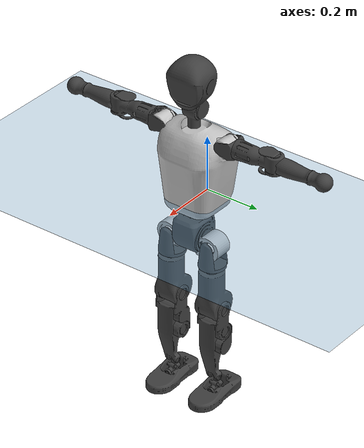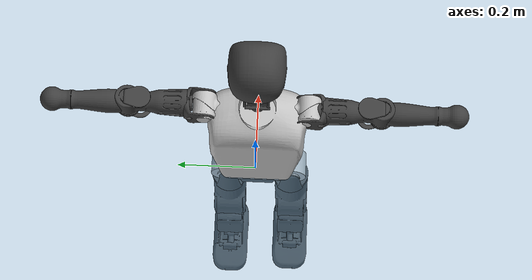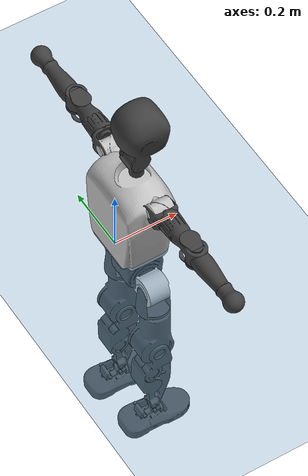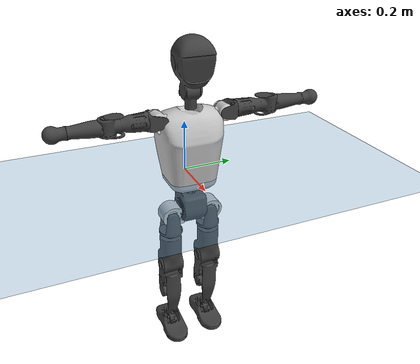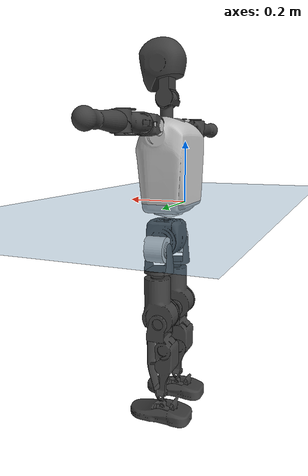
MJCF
<mujoco model="T1">
  <compiler angle="radian" assetdir="assets" balanceinertia="true" inertiafromgeom="false"/>

  <option timestep="0.005" density="1.2" viscosity="2e-05"/>

  <size nkey="1"/>

  <visual>
    <quality shadowsize="8192"/>
    <map shadowclip="0.5"/>
  </visual>

  <default>
    <default class="/">
      <joint armature="0.01" damping="0.01" frictionloss="0.1"/>
      <geom contype="0" conaffinity="0" group="1" solref="-1000 -80"/>
      <site size="0.01 0.005 0.005" group="5"/>
      <general forcelimited="true" biastype="affine" gainprm="25" biasprm="0 -25 -0.6"/>
      <default class="t1">
        <geom rgba="0.25 0.25 0.25 1"/>
        <default class="visual">
          <geom type="mesh" group="2"/>
        </default>
        <default class="collision">
          <geom group="3"/>
        </default>
        <default class="foot">
          <geom size="0.1115 0.05 0.015" type="box" condim="6" group="4" priority="1" solimp="0.015 1 0.015"/>
        </default>
        <default class="reward_collision_sphere">
          <geom group="5" rgba="1 0 0 1"/>
        </default>
      </default>
    </default>
  </default>

  <asset>
    <texture type="skybox" colorspace="auto" name="//unnamed_texture_0" builtin="gradient" rgb1="0.95 0.95 0.95" rgb2="0.95 0.95 0.95" width="100" height="600"/>
    <texture type="2d" colorspace="auto" name="texplane" builtin="checker" rgb1="0.345 0.575 0.748" rgb2="0.345 0.575 0.748" markrgb="1 1 1" width="512" height="512"/>
    <material name="MatPlane" class="/" texture="texplane" texuniform="true" texrepeat="2 2" specular="0.9"/>
    <mesh name="Trunk" class="/" file="Trunk.stl"/>
    <mesh name="H1" class="/" file="H1.stl"/>
    <mesh name="H2" class="/" file="H2.stl"/>
    <mesh name="AL1" class="/" file="AL1.stl"/>
    <mesh name="AL2" class="/" file="AL2.stl"/>
    <mesh name="AL3" class="/" file="AL3.stl"/>
    <mesh name="left_hand_link" class="/" file="left_hand_link.stl"/>
    <mesh name="AR1" class="/" file="AR1.stl"/>
    <mesh name="AR2" class="/" file="AR2.stl"/>
    <mesh name="AR3" class="/" file="AR3.stl"/>
    <mesh name="right_hand_link" class="/" file="right_hand_link.stl"/>
    <mesh name="Waist" class="/" file="Waist.stl"/>
    <mesh name="Hip_Pitch_Left" class="/" file="Hip_Pitch_Left.stl"/>
    <mesh name="Hip_Roll_Left" class="/" file="Hip_Roll_Left.stl"/>
    <mesh name="Hip_Yaw_Left" class="/" file="Hip_Yaw_Left.stl"/>
    <mesh name="Shank_Left" class="/" file="Shank_Left.stl"/>
    <mesh name="Ankle_Cross_Left" class="/" file="Ankle_Cross_Left.stl"/>
    <mesh name="left_foot_link" class="/" file="left_foot_link.stl"/>
    <mesh name="Hip_Pitch_Right" class="/" file="Hip_Pitch_Right.stl"/>
    <mesh name="Hip_Roll_Right" class="/" file="Hip_Roll_Right.stl"/>
    <mesh name="Hip_Yaw_Right" class="/" file="Hip_Yaw_Right.stl"/>
    <mesh name="Shank_Right" class="/" file="Shank_Right.stl"/>
    <mesh name="Ankle_Cross_Right" class="/" file="Ankle_Cross_Right.stl"/>
    <mesh name="right_foot_link" class="/" file="right_foot_link.stl"/>
  </asset>

  <worldbody>
    <geom name="floor" class="/" size="100 100 0.125" type="plane" group="0" material="MatPlane"/>
    <light name="toplight_shadow" class="/" pos="0 0 5" dir="0.0990148 0.0990148 -0.990148" type="directional" ambient="0.04 0.04 0.04" diffuse="0.55 0.55 0.55" specular="0.12 0.12 0.12"/>
    <light name="toplight_fill" class="/" pos="0 0 5" dir="0.0990148 0.0990148 -0.990148" type="directional" castshadow="false" ambient="0.04 0.04 0.04" diffuse="0.3 0.3 0.3" specular="0.08 0.08 0.08"/>
    <body name="trunk" childclass="t1" pos="-0.000242548 -0.00247831 -0.000121492" quat="1 -0.000153177 0.000136145 -0.000530947">
      <inertial pos="0.0604181 -0.00297474 0.118802" quat="0.999984 0.00174344 -0.00440652 -0.00292748" mass="11.8699" diaginertia="0.149279 0.0222688 0.0986871"/>
      <joint name="//unnamed_joint_0" type="free" armature="0" damping="0" frictionloss="0"/>
      <geom name="//unnamed_geom_1" class="visual" rgba="0.76 0.76 0.76 1" mesh="Trunk"/>
      <geom name="//unnamed_geom_2" class="collision" size="0.0754269 0.100569 0.150854" pos="0.0666289 0 0.134872" type="box"/>
      <geom name="//unnamed_geom_3" class="reward_collision_sphere" size="0.115655" pos="0.0666289 0 0.112393"/>
      <geom name="//unnamed_geom_4" class="reward_collision_sphere" size="0.0150854" pos="0.0666289 0.0665264 0"/>
      <geom name="//unnamed_geom_5" class="reward_collision_sphere" size="0.0150854" pos="0.0666289 -0.0665264 0"/>
      <geom name="//unnamed_geom_6" class="reward_collision_sphere" size="0.0150854" pos="0.0666289 0.083745 0.202308"/>
      <geom name="//unnamed_geom_7" class="reward_collision_sphere" size="0.0150854" pos="0.0666289 -0.083745 0.202308"/>
      <site name="imu" pos="0.00676214 -0.000667823 -0.00722336" size="0.0100569"/>
      <camera name="track" pos="0 -1.56533 0" quat="0.707107 0.707107 0 0" mode="trackcom"/>
      <camera name="ego_camera" pos="0.135479 0 0.472051" quat="-0.5 -0.5 0.5 0.5"/>
      <body name="H1" pos="0.0683151 -0.000157355 0.274182" quat="1 0.000216532 -4.42123e-05 -5.19225e-05">
        <inertial pos="-0.000295609 -0.00187454 0.0644991" quat="0.763127 -0.0141295 -0.00269209 0.646089" mass="0.459736" diaginertia="0.000400953 6.83996e-05 0.000270523"/>
        <joint name="AAHead_yaw" pos="0 0 0" axis="-0.000559595 -0.00891517 0.99996" stiffness="0.00270326" range="-1.54126 1.56143" armature="0.00957514" damping="0.00812753" frictionloss="0.0980014"/>
        <geom name="//unnamed_geom_8" class="visual" mesh="H1"/>
        <body name="H2" pos="-0.00368361 0.00258237 0.0669705" quat="0.999999 -0.001214 9.69042e-05 0.000807496">
          <inertial pos="0.00875957 0.000453064 0.112698" quat="0.988406 0.10538 -0.0737503 -0.0806832" mass="0.661234" diaginertia="0.00345882 0.000577295 0.00306201"/>
          <joint name="Head_pitch" pos="0 0 0" axis="0.0127373 -0.999917 -0.00179987" range="-1.21284 0.308549" armature="0.0111809" damping="0.00921437" frictionloss="0.105665"/>
          <geom name="//unnamed_geom_9" class="visual" mesh="H2"/>
          <geom name="//unnamed_geom_10" class="collision" size="0.0804554" pos="0.0111048 0 0.123632"/>
          <geom name="//unnamed_geom_11" class="reward_collision_sphere" size="0.0905123" pos="0.0222096 0 0.112393"/>
        </body>
      </body>
      <body name="AL1" pos="0.0674266 0.0848099 0.247091" quat="1 0.000358907 -2.68074e-05 0.000327079">
        <inertial pos="-0.00291516 0.0350168 -0.000129621" quat="0.504193 0.4972 -0.503515 0.49503" mass="0.524621" diaginertia="0.00224295 0.000375124 0.000508322"/>
        <joint name="Left_Shoulder_Pitch" pos="0 0 0" axis="-0.00784907 0.999969 0.000449861" range="-3.35056 1.19337" armature="0.010206" damping="0.0125602" frictionloss="0.11262"/>
        <geom name="//unnamed_geom_12" class="visual" rgba="0.76 0.76 0.76 1" mesh="AL1"/>
        <body name="AL2" pos="0.00119361 0.04093 0.00234039" quat="1 0.000680407 0.000115403 -3.31809e-05">
          <inertial pos="0.00181233 0.0289432 -0.00260312" quat="0.485333 0.507454 -0.491664 0.514985" mass="0.166173" diaginertia="0.000687202 0.000106621 0.000315351"/>
          <joint name="Left_Shoulder_Roll" pos="0 0 0" axis="-0.99997 0.00679776 -0.00363075" stiffness="0.00994278" range="-1.52369 1.73646" armature="0.0093815" damping="0" frictionloss="0.102658"/>
          <geom name="//unnamed_geom_13" class="visual" mesh="AL2"/>
          <body name="AL3" pos="0.00349772 0.0485454 0.00293407" quat="0.999999 -0.000954013 -0.000207947 0.00035703">
            <inertial pos="-0.000372485 0.0677909 0.00222951" quat="0.706176 0.707946 -0.00864994 -0.00735746" mass="1.03601" diaginertia="0.0215763 0.00367552 0.0010874"/>
            <joint name="Left_Elbow_Pitch" pos="0 0 0" axis="0.00931279 -0.999898 -0.0107916" range="-2.24086 2.21337" armature="0.0086305" damping="7.85631e-05" frictionloss="0.104619"/>
            <geom name="//unnamed_geom_14" class="visual" mesh="AL3"/>
            <geom name="//unnamed_geom_15" class="collision" size="0.0301708 0.0754269" pos="0 0.0391332 0" quat="0.707105 0.707108 0 0" type="cylinder"/>
            <geom name="//unnamed_geom_16" class="reward_collision_sphere" size="0.0362049"/>
            <body name="left_hand_link" pos="-0.00181936 0.117488 -0.00109971" quat="1 -0.000239567 -0.000569954 0.000281509">
              <inertial pos="0.00147639 0.0886736 0.000310625" quat="0.699827 0.714309 -0.00037092 0.0019573" mass="0.334515" diaginertia="0.0137414 0.00245438 0.000381531"/>
              <joint name="Left_Elbow_Yaw" pos="0 0 0" axis="-0.00395396 0.0010151 0.999992" range="-2.43738 0.0379915" armature="0.00943978" damping="0.0247474" frictionloss="0.0957997"/>
              <geom name="//unnamed_geom_17" class="visual" mesh="left_hand_link"/>
              <geom name="//unnamed_geom_18" class="collision" size="0.0301708 0.0879981" pos="0 0.101746 0" quat="0.707105 0.707108 0 0" type="cylinder"/>
              <geom name="//unnamed_geom_19" class="reward_collision_sphere" size="0.0502846"/>
              <geom name="//unnamed_geom_20" class="reward_collision_sphere" size="0.0351992" pos="0 0.086093 0"/>
              <geom name="//unnamed_geom_21" class="reward_collision_sphere" size="0.0351992" pos="0 0.168273 0"/>
            </body>
          </body>
        </body>
      </body>
      <body name="AR1" pos="0.0660265 -0.0816817 0.248236" quat="0.999998 9.79625e-05 0.00180877 0.000582726">
        <inertial pos="-0.00257603 -0.0327568 -0.00208965" quat="0.509381 0.500676 -0.499447 0.490313" mass="0.555602" diaginertia="0.00222933 0.000380646 0.00054159"/>
        <joint name="Right_Shoulder_Pitch" pos="0 0 0" axis="0.00170524 -0.999998 -0.000397141" stiffness="0.0103483" range="-1.23985 3.26077" armature="0.0100782" damping="0" frictionloss="0.0875561"/>
        <geom name="//unnamed_geom_22" class="visual" rgba="0.76 0.76 0.76 1" mesh="AR1"/>
        <body name="AR2" pos="-0.00194396 -0.0339785 -0.00200147" quat="1 0.00010483 1.36984e-05 0.000192695">
          <inertial pos="0.00251679 -0.0301748 -0.00191395" quat="0.515603 0.477068 -0.511882 0.494507" mass="0.163464" diaginertia="0.000672968 0.000100356 0.000307092"/>
          <joint name="Right_Shoulder_Roll" pos="0 0 0" axis="-0.999948 0.00273262 0.00984496" range="-1.68199 1.62822" armature="0.0096181" damping="0.0185904" frictionloss="0.0879946"/>
          <geom name="//unnamed_geom_23" class="visual" mesh="AR2"/>
          <body name="AR3" pos="0.00182195 -0.0446941 0.00249786" quat="1 -0.000109041 0.00016357 -0.000100342">
            <inertial pos="-0.000720176 -0.0662101 -0.00241657" quat="0.707866 0.706346 -3.62101e-06 0.000177942" mass="1.03479" diaginertia="0.0216845 0.0036327 0.00110664"/>
            <joint name="Right_Elbow_Pitch" pos="0 0 0" axis="-0.000628645 0.999999 -0.000998174" stiffness="0.00709417" range="-2.26528 2.22642" armature="0.0103804" damping="0.0123575" frictionloss="0.109536"/>
            <geom name="//unnamed_geom_24" class="visual" mesh="AR3"/>
            <geom name="//unnamed_geom_25" class="collision" size="0.0301708 0.0754269" pos="0 -0.0391332 0" quat="0.707105 0.707108 0 0" type="cylinder"/>
            <geom name="//unnamed_geom_26" class="reward_collision_sphere" size="0.0362049"/>
            <body name="right_hand_link" pos="-0.000813332 -0.115151 -0.000281071" quat="1 -0.000223706 -0.000111443 -0.000152834">
              <inertial pos="-0.000309768 -0.0884906 -6.55716e-06" quat="0.706675 0.707537 0.00120095 -0.000628709" mass="0.316103" diaginertia="0.0132698 0.00230969 0.000373897"/>
              <joint name="Right_Elbow_Yaw" pos="0 0 0" axis="-0.00620059 0.000478186 0.999981" stiffness="0.00141235" range="0.00661771 2.47696" armature="0.00996481" damping="0.0161676" frictionloss="0.106677"/>
              <geom name="//unnamed_geom_27" class="visual" mesh="right_hand_link"/>
              <geom name="//unnamed_geom_28" class="collision" size="0.0301708 0.0879981" pos="0 -0.101746 0" quat="0.707105 0.707108 0 0" type="cylinder"/>
              <geom name="//unnamed_geom_29" class="reward_collision_sphere" size="0.0502846"/>
              <geom name="//unnamed_geom_30" class="reward_collision_sphere" size="0.0351992" pos="0 -0.086093 0"/>
              <geom name="//unnamed_geom_31" class="reward_collision_sphere" size="0.0351992" pos="0 -0.168273 0"/>
            </body>
          </body>
        </body>
      </body>
      <body name="Waist" pos="0.069177 -0.00167886 -0.131412" quat="0.999999 -0.000518062 0.000898081 0.000409879">
        <inertial pos="0.00317087 -0.00272331 0.00996725" quat="0.983629 -0.000601836 -0.180187 0.00263603" mass="2.69336" diaginertia="0.00946966 0.00160063 0.00880405"/>
        <joint name="Waist" pos="0 0 0" axis="-0.00141178 -0.00166924 0.999998" range="-1.53717 1.57777" armature="0.00951499" damping="0.0186174" frictionloss="0.100457"/>
        <geom name="//unnamed_geom_32" class="visual" mesh="Waist"/>
        <body name="Hip_Pitch_Left" pos="0.000824136 0.0797275 -0.00193628" quat="0.999999 -0.000737455 0.000506994 -0.000651534">
          <inertial pos="0.000873344 -0.00853744 -0.0202545" quat="0.975256 0.220929 0.00492683 0.00647538" mass="1.07178" diaginertia="0.00306679 0.000423882 0.00232142"/>
          <joint name="Left_Hip_Pitch" pos="0 0 0" axis="0.00557866 0.999924 -0.0109811" stiffness="0.00442603" range="-1.80306 1.54141" armature="0.0111567" damping="0.00994054" frictionloss="0.104866"/>
          <geom name="//unnamed_geom_33" class="visual" rgba="0.76 0.76 0.76 1" mesh="Hip_Pitch_Left"/>
          <body name="Hip_Roll_Left" pos="-0.00194234 -0.00313275 -0.0227167" quat="0.999999 0.000520864 -0.000946899 0.00020717">
            <inertial pos="0.000620952 -0.000939895 -0.0587771" quat="0.703437 -0.0122815 0.00455762 0.710637" mass="0.390601" diaginertia="0.00299022 0.00045294 0.000943711"/>
            <joint name="Left_Hip_Roll" pos="0 0 0" axis="-0.999966 0.0049777 0.0066149" range="-1.51457 0.22108" armature="0.00882756" damping="0.00610753" frictionloss="0.0913047"/>
            <geom name="//unnamed_geom_34" class="visual" mesh="Hip_Roll_Left"/>
            <geom name="//unnamed_geom_35" class="reward_collision_sphere" size="0.0553131"/>
            <body name="Hip_Yaw_Left" pos="0.00368521 0.000652963 -0.0957235" quat="1 -0.000230689 5.98282e-05 -0.000344123">
              <inertial pos="-0.00825789 0.00218601 -0.100387" quat="0.698713 -0.0296306 -0.0354467 0.713909" mass="2.1462" diaginertia="0.0441196 0.00736437 0.00469491"/>
              <joint name="Left_Hip_Yaw" pos="0 0 0" axis="0.000362156 -0.000597459 -1" range="-1.03285 0.993003" armature="0.00998127" damping="0.0216556" frictionloss="0.101852"/>
              <geom name="//unnamed_geom_36" class="visual" mesh="Hip_Yaw_Left"/>
              <geom name="//unnamed_geom_37" class="collision" size="0.0502846 0.0804554" type="cylinder"/>
              <body name="Shank_Left" pos="-0.0172613 0.000138441 -0.152034" quat="1 0.000767701 0.000125471 -0.00033088">
                <inertial pos="-0.00898757 -0.000374715 -0.139997" quat="0.997667 0.00254946 -0.024439 0.0636859" mass="1.85636" diaginertia="0.0600106 0.0105249 0.00345219"/>
                <joint name="Left_Knee_Pitch" pos="0 0 0" axis="0.00403147 0.999992 -0.000739586" stiffness="0.00832009" range="0.0511707 2.28942" armature="0.00984333" damping="0" frictionloss="0.0890779"/>
                <geom name="//unnamed_geom_38" class="visual" mesh="Shank_Left"/>
                <geom name="//unnamed_geom_39" class="collision" size="0.0502846 0.0754269" pos="0 0 -0.134872" type="cylinder"/>
                <geom name="//unnamed_geom_40" class="reward_collision_sphere" size="0.06537"/>
                <body name="Ankle_Cross_Left" pos="-0.00168649 0.000847943 -0.315675" quat="1 -0.000240225 -3.58997e-05 -9.65672e-06">
                  <inertial pos="-0.00664309 0.00212786 -0.00988509" quat="0.442488 0.547236 0.553036 0.445969" mass="0.0753243" diaginertia="5.00064e-05 7.61143e-06 2.08979e-05"/>
                  <joint name="Left_Ankle_Pitch" pos="0 0 0" axis="-0.00258387 0.999976 0.00648262" range="-0.844924 0.400941" armature="0.00860932" damping="0.0108757" frictionloss="0.10162"/>
                  <geom name="//unnamed_geom_41" class="visual" mesh="Ankle_Cross_Left"/>
                  <body name="left_foot_link" pos="-0.00077682 0.00128857 -0.0160104" quat="1 -1.90266e-05 -0.000368383 -0.000438857">
                    <inertial pos="-0.000611508 0.000475498 -0.0124797" quat="0.00348162 0.615803 0.00917745 0.787839" mass="0.679009" diaginertia="0.00431379 0.000694244 0.00368121"/>
                    <joint name="Left_Ankle_Roll" pos="0 0 0" axis="-1 7.62514e-05 -5.65943e-05" range="-0.422135 0.438888" armature="0.010242" damping="0" frictionloss="0.105261"/>
                    <geom name="//unnamed_geom_42" class="visual" mesh="left_foot_link"/>
                    <geom name="left_foot" class="foot" size="0.0698641 0.0484433 0.0173147" pos="0.0111048 0 -0.016859"/>
                    <geom name="//unnamed_geom_44" class="reward_collision_sphere" size="0.052296" pos="0.0111048 0 -0.016859"/>
                    <geom name="//unnamed_geom_45" class="reward_collision_sphere" size="0.0301708" pos="0.105496 -0.0180013 -0.016859"/>
                    <geom name="//unnamed_geom_46" class="reward_collision_sphere" size="0.0301708" pos="-0.0777337 -0.0180013 -0.016859"/>
                    <site name="left_foot" class="foot" pos="0.0111048 0 -0.016859" size="0.0100569"/>
                  </body>
                </body>
              </body>
            </body>
          </body>
        </body>
        <body name="Hip_Pitch_Right" pos="-0.000814776 -0.0839083 -0.00129218" quat="0.999999 -0.00093865 0.000163343 -0.000428866">
          <inertial pos="-0.00113595 0.00880388 -0.020311" quat="0.974076 -0.22483 0.023639 -0.0083137" mass="1.07731" diaginertia="0.00308265 0.000432952 0.00219266"/>
          <joint name="Right_Hip_Pitch" pos="0 0 0" axis="-0.0017513 -0.99999 0.00400924" range="-1.5971 1.80149" armature="0.00876519" damping="0.0010924" frictionloss="0.0927267"/>
          <geom name="//unnamed_geom_47" class="visual" rgba="0.76 0.76 0.76 1" mesh="Hip_Pitch_Right"/>
          <body name="Hip_Roll_Right" pos="0.00211379 -0.00386526 -0.0252256" quat="1 -0.000441489 -0.00018142 0.000317823">
            <inertial pos="0.00199641 -0.00210079 -0.0587045" quat="0.710074 -0.00780145 0.00647601 0.704054" mass="0.398236" diaginertia="0.00297613 0.000452107 0.00093531"/>
            <joint name="Right_Hip_Roll" pos="0 0 0" axis="-0.999992 0.0037038 0.00131008" stiffness="0.00153591" range="-0.207765 1.57351" armature="0.0114176" damping="0.00879037" frictionloss="0.104837"/>
            <geom name="//unnamed_geom_48" class="visual" mesh="Hip_Roll_Right"/>
            <geom name="//unnamed_geom_49" class="reward_collision_sphere" size="0.0553131"/>
            <body name="Hip_Yaw_Right" pos="0.00249478 -0.00261316 -0.0951306" quat="1 7.0934e-06 0.000487407 0.000385598">
              <inertial pos="-0.00597858 -0.00165445 -0.0979786" quat="0.714546 -0.0315462 -0.0337632 0.69806" mass="2.28514" diaginertia="0.0436455 0.0075409 0.00458668"/>
              <joint name="Right_Hip_Yaw" pos="0 0 0" axis="0.00320503 -0.00419831 -0.999986" range="-1.05597 0.99483" armature="0.0112592" damping="0.0131795" frictionloss="0.0955341"/>
              <geom name="//unnamed_geom_50" class="visual" mesh="Hip_Yaw_Right"/>
              <geom name="//unnamed_geom_51" class="collision" size="0.0502846 0.0804554" type="cylinder"/>
              <body name="Shank_Right" pos="-0.0110124 -0.0019234 -0.149725" quat="1 0.00016182 0.000148532 9.96721e-05">
                <inertial pos="-0.00769538 0.00108555 -0.139482" quat="0.999087 -0.00431238 -0.0285096 -0.0315293" mass="1.80986" diaginertia="0.0580042 0.010298 0.0034205"/>
                <joint name="Right_Knee_Pitch" pos="0 0 0" axis="-0.000400801 -0.999999 -0.000933839" stiffness="0.00088734" range="-2.33452 -0.0130654" armature="0.0093917" damping="0.0142018" frictionloss="0.0868297"/>
                <geom name="//unnamed_geom_52" class="visual" mesh="Shank_Right"/>
                <geom name="//unnamed_geom_53" class="collision" size="0.0502846 0.0754269" pos="0 0 -0.134872" type="cylinder"/>
                <geom name="//unnamed_geom_54" class="reward_collision_sphere" size="0.06537"/>
                <body name="Ankle_Cross_Right" pos="0.0029934 -0.000609774 -0.311415" quat="0.999999 0.000934019 -8.9795e-06 0.00100076">
                  <inertial pos="-0.00688632 -0.00210651 -0.00816776" quat="0.447344 0.550028 0.542769 0.450282" mass="0.0739967" diaginertia="5.05989e-05 7.53822e-06 2.03205e-05"/>
                  <joint name="Right_Ankle_Pitch" pos="0 0 0" axis="-0.0162075 -0.999867 0.00172189" range="-0.354435 0.867789" armature="0.0100367" damping="0.007102" frictionloss="0.0946545"/>
                  <geom name="//unnamed_geom_55" class="visual" mesh="Ankle_Cross_Right"/>
                  <body name="right_foot_link" pos="-0.000675812 -3.87617e-05 -0.0156779" quat="1 0.000199517 -5.60678e-05 -0.000851897">
                    <inertial pos="-7.7521e-05 0.00287118 -0.0106204" quat="0.00271431 0.612322 0.0036133 0.790596" mass="0.67221" diaginertia="0.0045575 0.000695979 0.00384005"/>
                    <joint name="Right_Ankle_Roll" pos="0 0 0" axis="-0.999987 0.00499957 0.00112758" range="-0.494901 0.454491" armature="0.0101657" damping="0.0063272" frictionloss="0.0935946"/>
                    <geom name="//unnamed_geom_56" class="visual" mesh="right_foot_link"/>
                    <geom name="right_foot" class="foot" size="0.0681624 0.0464375 0.0162823" pos="0.0111048 0 -0.016859"/>
                    <geom name="//unnamed_geom_58" class="reward_collision_sphere" size="0.0402277"/>
                    <geom name="//unnamed_geom_59" class="reward_collision_sphere" size="0.0301708" pos="0.0111048 0 -0.016859"/>
                    <geom name="//unnamed_geom_60" class="reward_collision_sphere" size="0.0301708" pos="0.105496 0.0180013 -0.016859"/>
                    <geom name="//unnamed_geom_61" class="reward_collision_sphere" size="0.0301708" pos="-0.0777337 0.0180013 -0.016859"/>
                    <site name="right_foot" class="foot" pos="0.0111048 0 -0.016859" size="0.0100569"/>
                  </body>
                </body>
              </body>
            </body>
          </body>
        </body>
      </body>
    </body>
  </worldbody>

  <contact>
    <pair class="/" geom1="floor" geom2="left_foot" name="//unnamed_contact_0"/>
    <pair class="/" geom1="floor" geom2="right_foot" name="//unnamed_contact_1"/>
  </contact>

  <actuator>
    <general name="AAHead_yaw" class="/" joint="AAHead_yaw" forcerange="-6.4961 6.4961" gainprm="23.4132" biasprm="0 -23.4132 -0.533607"/>
    <general name="Head_pitch" class="/" joint="Head_pitch" forcerange="-7.44324 7.44324" gainprm="23.4132" biasprm="0 -23.4132 -0.533607"/>
    <general name="Left_Shoulder_Pitch" class="/" joint="Left_Shoulder_Pitch" forcerange="-16.7338 16.7338" gainprm="23.4132" biasprm="0 -23.4132 -0.533607"/>
    <general name="Left_Shoulder_Roll" class="/" joint="Left_Shoulder_Roll" forcerange="-17.9957 17.9957" gainprm="23.4132" biasprm="0 -23.4132 -0.533607"/>
    <general name="Left_Elbow_Pitch" class="/" joint="Left_Elbow_Pitch" forcerange="-18.062 18.062" gainprm="23.4132" biasprm="0 -23.4132 -0.533607"/>
    <general name="Left_Elbow_Yaw" class="/" joint="Left_Elbow_Yaw" forcerange="-17.3218 17.3218" gainprm="23.4132" biasprm="0 -23.4132 -0.533607"/>
    <general name="Right_Shoulder_Pitch" class="/" joint="Right_Shoulder_Pitch" forcerange="-18.4269 18.4269" gainprm="23.4132" biasprm="0 -23.4132 -0.533607"/>
    <general name="Right_Shoulder_Roll" class="/" joint="Right_Shoulder_Roll" forcerange="-16.2437 16.2437" gainprm="23.4132" biasprm="0 -23.4132 -0.533607"/>
    <general name="Right_Elbow_Pitch" class="/" joint="Right_Elbow_Pitch" forcerange="-19.8279 19.8279" gainprm="23.4132" biasprm="0 -23.4132 -0.533607"/>
    <general name="Right_Elbow_Yaw" class="/" joint="Right_Elbow_Yaw" forcerange="-16.4183 16.4183" gainprm="23.4132" biasprm="0 -23.4132 -0.533607"/>
    <general name="Waist" class="/" joint="Waist" forcerange="-30.5154 30.5154" gainprm="23.4132" biasprm="0 -23.4132 -0.533607"/>
    <general name="Left_Hip_Pitch" class="/" joint="Left_Hip_Pitch" forcerange="-40.8113 40.8113" gainprm="23.4132" biasprm="0 -23.4132 -0.533607"/>
    <general name="Left_Hip_Roll" class="/" joint="Left_Hip_Roll" forcerange="-31.2038 31.2038" gainprm="23.4132" biasprm="0 -23.4132 -0.533607"/>
    <general name="Left_Hip_Yaw" class="/" joint="Left_Hip_Yaw" forcerange="-28.03 28.03" gainprm="23.4132" biasprm="0 -23.4132 -0.533607"/>
    <general name="Left_Knee_Pitch" class="/" joint="Left_Knee_Pitch" forcerange="-59.2018 59.2018" gainprm="23.4132" biasprm="0 -23.4132 -0.533607"/>
    <general name="Left_Ankle_Pitch" class="/" joint="Left_Ankle_Pitch" forcerange="-18.5957 18.5957" gainprm="23.4132" biasprm="0 -23.4132 -0.533607"/>
    <general name="Left_Ankle_Roll" class="/" joint="Left_Ankle_Roll" forcerange="-16.6201 16.6201" gainprm="23.4132" biasprm="0 -23.4132 -0.533607"/>
    <general name="Right_Hip_Pitch" class="/" joint="Right_Hip_Pitch" forcerange="-45.9502 45.9502" gainprm="23.4132" biasprm="0 -23.4132 -0.533607"/>
    <general name="Right_Hip_Roll" class="/" joint="Right_Hip_Roll" forcerange="-29.6665 29.6665" gainprm="23.4132" biasprm="0 -23.4132 -0.533607"/>
    <general name="Right_Hip_Yaw" class="/" joint="Right_Hip_Yaw" forcerange="-29.055 29.055" gainprm="23.4132" biasprm="0 -23.4132 -0.533607"/>
    <general name="Right_Knee_Pitch" class="/" joint="Right_Knee_Pitch" forcerange="-65.3293 65.3293" gainprm="23.4132" biasprm="0 -23.4132 -0.533607"/>
    <general name="Right_Ankle_Pitch" class="/" joint="Right_Ankle_Pitch" forcerange="-20.0918 20.0918" gainprm="23.4132" biasprm="0 -23.4132 -0.533607"/>
    <general name="Right_Ankle_Roll" class="/" joint="Right_Ankle_Roll" forcerange="-15.3842 15.3842" gainprm="23.4132" biasprm="0 -23.4132 -0.533607"/>
  </actuator>

  <sensor>
    <gyro site="imu" name="imu_angular_velocity"/>
    <velocimeter site="imu" name="imu_linear_velocity"/>
    <framelinvel objtype="site" objname="left_foot" name="left_foot_global_linear_velocity"/>
    <framelinvel objtype="site" objname="right_foot" name="right_foot_global_linear_velocity"/>
  </sensor>

  <keyframe>
    <key name="home" qpos="0 0 0.6385 1 0 0 0 0 0 0 1.4 0 -0.4 0 -1.4 0 0.4 0 -0.4 0 0 0.8 -0.4 0 0.4 0 0 -0.8 0.4 0"/>
  </keyframe>
</mujoco>
